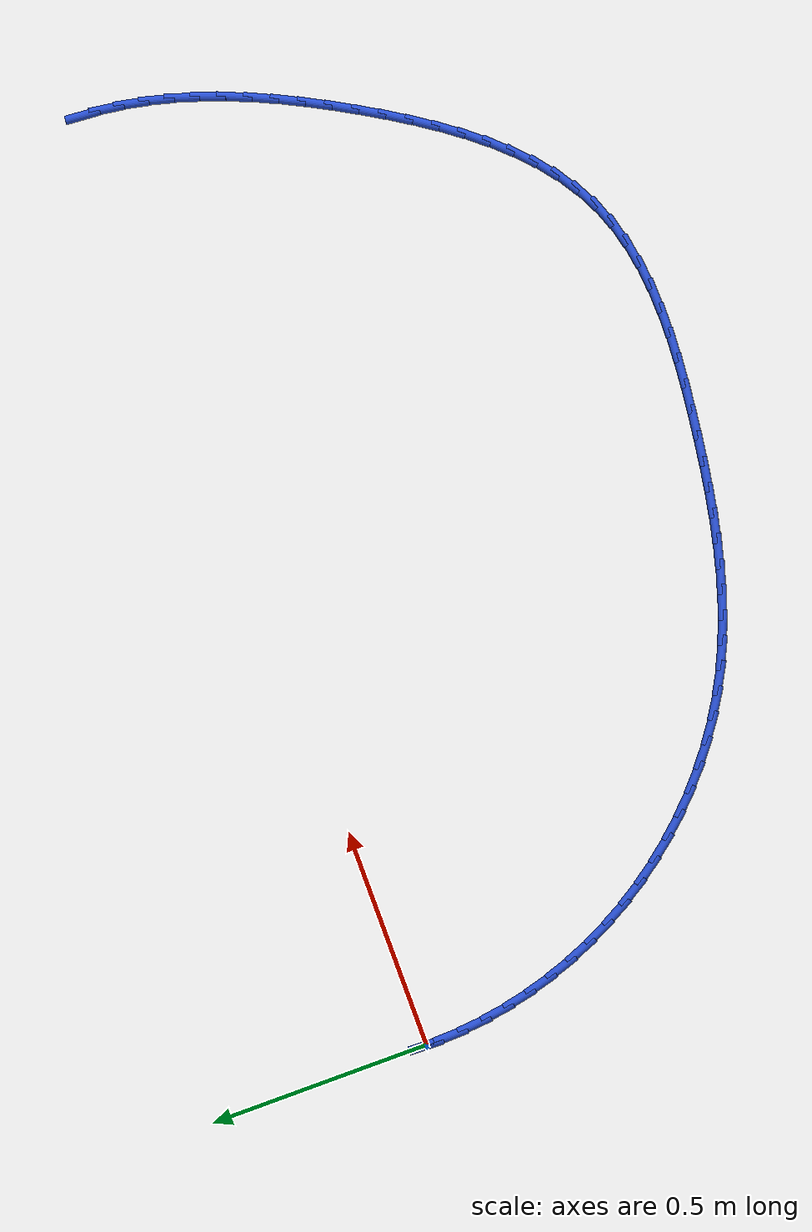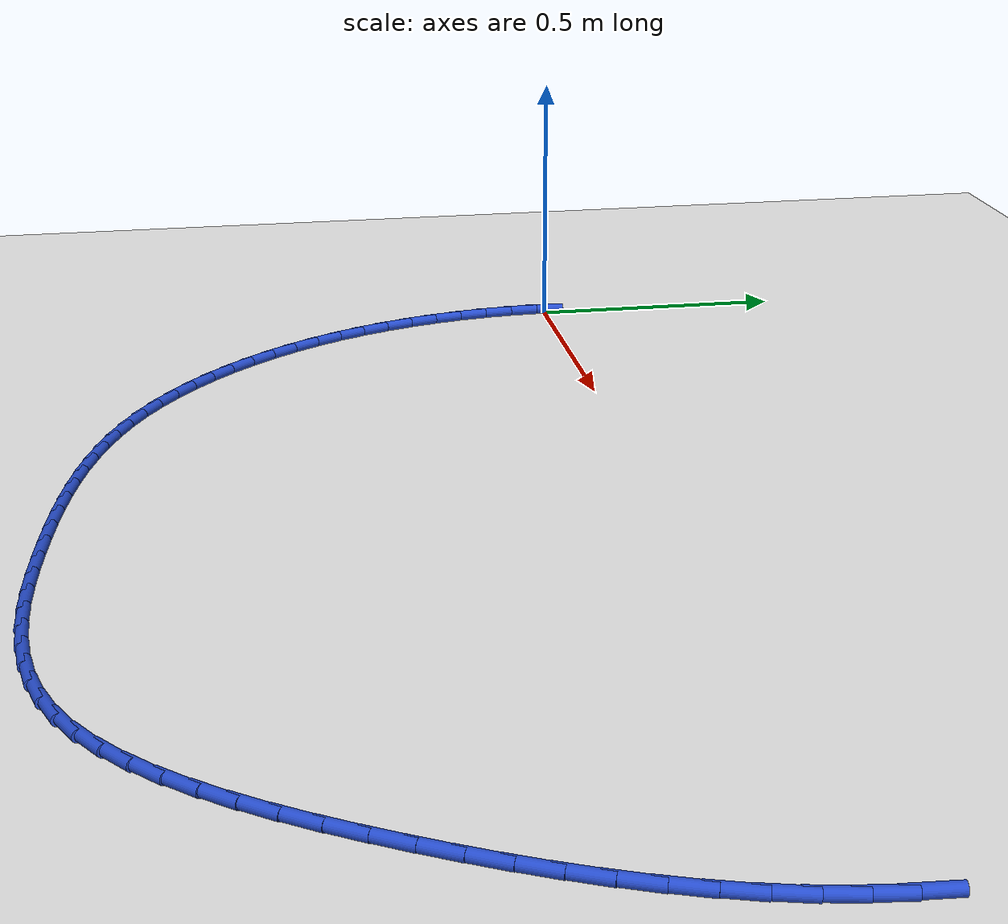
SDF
<sdf version="1.6">
 <world name="default">
  <model name="ground_plane">
   <static>1</static>
   <link name="link">
    <collision name="collision">
     <geometry><plane><normal>0 0 1</normal><size>100 100</size></plane></geometry>
     <surface><friction><ode><mu>100</mu><mu2>50</mu2></ode></friction></surface>
    </collision>
    <visual name="visual">
     <cast_shadows>0</cast_shadows>
     <geometry><plane><normal>0 0 1</normal><size>100 100</size></plane></geometry>
     <material>
      <script><uri>file://media/materials/scripts/gazebo.material</uri><name>Gazebo/WhiteGlow</name></script>
     </material>
    </visual>
   </link>
  </model>
  <model name="line">
   <link name="link_0">
    <pose>6.938893903907228e-18 -1.5265566588595902e-16 0.01 0 1.57 1.540218066502623</pose>
    <collision name="collision">
     <geometry><cylinder><radius>0.01</radius><length>0.08</length></cylinder></geometry>
    </collision>
    <visual name="visual">
     <material>
      <script><name>Gazebo/Blue</name><uri>file://media/materials/scripts/gazebo.material</uri></script>
     </material>
     <geometry><cylinder><radius>0.01</radius><length>0.08</length></cylinder></geometry>
    </visual>
   </link>
   <link name="link_61">
    <pose>2.2039437910739648 0.010382539438982713 0.01 0 1.57 1.498310728232734</pose>
    <collision name="collision">
     <geometry><cylinder><radius>0.01</radius><length>0.08</length></cylinder></geometry>
    </collision>
    <visual name="visual">
     <material>
      <script><name>Gazebo/Blue</name><uri>file://media/materials/scripts/gazebo.material</uri></script>
     </material>
     <geometry><cylinder><radius>0.01</radius><length>0.08</length></cylinder></geometry>
    </visual>
   </link>
   <link name="link_62">
    <pose>2.199922222593267 -0.04500118874816082 0.01 0 1.57 1.4302592985829485</pose>
    <collision name="collision">
     <geometry><cylinder><radius>0.01</radius><length>0.08</length></cylinder></geometry>
    </collision>
    <visual name="visual">
     <material>
      <script><name>Gazebo/Blue</name><uri>file://media/materials/scripts/gazebo.material</uri></script>
     </material>
     <geometry><cylinder><radius>0.01</radius><length>0.08</length></cylinder></geometry>
    </visual>
   </link>
   <link name="link_63">
    <pose>2.1920761381594764 -0.10046245247562685 0.01 0 1.57 1.3680539249075712</pose>
    <collision name="collision">
     <geometry><cylinder><radius>0.01</radius><length>0.08</length></cylinder></geometry>
    </collision>
    <visual name="visual">
     <material>
      <script><name>Gazebo/Blue</name><uri>file://media/materials/scripts/gazebo.material</uri></script>
     </material>
     <geometry><cylinder><radius>0.01</radius><length>0.08</length></cylinder></geometry>
    </visual>
   </link>
   <link name="link_64">
    <pose>2.1806736213981512 -0.15593114249581413 0.01 0 1.57 1.3116110732296762</pose>
    <collision name="collision">
     <geometry><cylinder><radius>0.01</radius><length>0.08</length></cylinder></geometry>
    </collision>
    <visual name="visual">
     <material>
      <script><name>Gazebo/Blue</name><uri>file://media/materials/scripts/gazebo.material</uri></script>
     </material>
     <geometry><cylinder><radius>0.01</radius><length>0.08</length></cylinder></geometry>
    </visual>
   </link>
   <link name="link_65">
    <pose>2.1659827559348455 -0.21133714956112346 0.01 0 1.57 1.2607044508384098</pose>
    <collision name="collision">
     <geometry><cylinder><radius>0.01</radius><length>0.08</length></cylinder></geometry>
    </collision>
    <visual name="visual">
     <material>
      <script><name>Gazebo/Blue</name><uri>file://media/materials/scripts/gazebo.material</uri></script>
     </material>
     <geometry><cylinder><radius>0.01</radius><length>0.08</length></cylinder></geometry>
    </visual>
   </link>
   <link name="link_66">
    <pose>2.148271625395115 -0.26661036442395564 0.01 0 1.57 1.2150228325093915</pose>
    <collision name="collision">
     <geometry><cylinder><radius>0.01</radius><length>0.08</length></cylinder></geometry>
    </collision>
    <visual name="visual">
     <material>
      <script><name>Gazebo/Blue</name><uri>file://media/materials/scripts/gazebo.material</uri></script>
     </material>
     <geometry><cylinder><radius>0.01</radius><length>0.08</length></cylinder></geometry>
    </visual>
   </link>
   <link name="link_67">
    <pose>2.127808313404516 -0.32168067783670923 0.01 0 1.57 1.1742152364113005</pose>
    <collision name="collision">
     <geometry><cylinder><radius>0.01</radius><length>0.08</length></cylinder></geometry>
    </collision>
    <visual name="visual">
     <material>
      <script><name>Gazebo/Blue</name><uri>file://media/materials/scripts/gazebo.material</uri></script>
     </material>
     <geometry><cylinder><radius>0.01</radius><length>0.08</length></cylinder></geometry>
    </visual>
   </link>
   <link name="link_68">
    <pose>2.104860903588604 -0.37647798055178516 0.01 0 1.57 1.1379235115586808</pose>
    <collision name="collision">
     <geometry><cylinder><radius>0.01</radius><length>0.08</length></cylinder></geometry>
    </collision>
    <visual name="visual">
     <material>
      <script><name>Gazebo/Blue</name><uri>file://media/materials/scripts/gazebo.material</uri></script>
     </material>
     <geometry><cylinder><radius>0.01</radius><length>0.08</length></cylinder></geometry>
    </visual>
   </link>
   <link name="link_69">
    <pose>2.079697479572936 -0.43093216332158363 0.01 0 1.57 1.1058043054249334</pose>
    <collision name="collision">
     <geometry><cylinder><radius>0.01</radius><length>0.08</length></cylinder></geometry>
    </collision>
    <visual name="visual">
     <material>
      <script><name>Gazebo/Blue</name><uri>file://media/materials/scripts/gazebo.material</uri></script>
     </material>
     <geometry><cylinder><radius>0.01</radius><length>0.08</length></cylinder></geometry>
    </visual>
   </link>
   <link name="link_70">
    <pose>2.0525861249830655 -0.4849731168985052 0.01 0 1.57 1.077542966920404</pose>
    <collision name="collision">
     <geometry><cylinder><radius>0.01</radius><length>0.08</length></cylinder></geometry>
    </collision>
    <visual name="visual">
     <material>
      <script><name>Gazebo/Blue</name><uri>file://media/materials/scripts/gazebo.material</uri></script>
     </material>
     <geometry><cylinder><radius>0.01</radius><length>0.08</length></cylinder></geometry>
    </visual>
   </link>
   <link name="link_71">
    <pose>2.023794923444551 -0.5385307320349487 0.01 0 1.57 1.052861814331005</pose>
    <collision name="collision">
     <geometry><cylinder><radius>0.01</radius><length>0.08</length></cylinder></geometry>
    </collision>
    <visual name="visual">
     <material>
      <script><name>Gazebo/Blue</name><uri>file://media/materials/scripts/gazebo.material</uri></script>
     </material>
     <geometry><cylinder><radius>0.01</radius><length>0.08</length></cylinder></geometry>
    </visual>
   </link>
   <link name="link_72">
    <pose>1.9935919585829471 -0.591534899483315 0.01 0 1.57 1.0300774965485733</pose>
    <collision name="collision">
     <geometry><cylinder><radius>0.01</radius><length>0.08</length></cylinder></geometry>
    </collision>
    <visual name="visual">
     <material>
      <script><name>Gazebo/Blue</name><uri>file://media/materials/scripts/gazebo.material</uri></script>
     </material>
     <geometry><cylinder><radius>0.01</radius><length>0.08</length></cylinder></geometry>
    </visual>
   </link>
   <link name="link_73">
    <pose>1.9621819333708788 -0.6438494406897004 0.01 0 1.57 1.002448240848405</pose>
    <collision name="collision">
     <geometry><cylinder><radius>0.01</radius><length>0.08</length></cylinder></geometry>
    </collision>
    <visual name="visual">
     <material>
      <script><name>Gazebo/Blue</name><uri>file://media/materials/scripts/gazebo.material</uri></script>
     </material>
     <geometry><cylinder><radius>0.01</radius><length>0.08</length></cylinder></geometry>
    </visual>
   </link>
   <link name="link_74">
    <pose>1.9294871487992558 -0.6950437954211309 0.01 0 1.57 0.9676568129241236</pose>
    <collision name="collision">
     <geometry><cylinder><radius>0.01</radius><length>0.08</length></cylinder></geometry>
    </collision>
    <visual name="visual">
     <material>
      <script><name>Gazebo/Blue</name><uri>file://media/materials/scripts/gazebo.material</uri></script>
     </material>
     <geometry><cylinder><radius>0.01</radius><length>0.08</length></cylinder></geometry>
    </visual>
   </link>
   <link name="link_75">
    <pose>1.8953512816030045 -0.744605443890549 0.01 0 1.57 0.9249916588104284</pose>
    <collision name="collision">
     <geometry><cylinder><radius>0.01</radius><length>0.08</length></cylinder></geometry>
    </collision>
    <visual name="visual">
     <material>
      <script><name>Gazebo/Blue</name><uri>file://media/materials/scripts/gazebo.material</uri></script>
     </material>
     <geometry><cylinder><radius>0.01</radius><length>0.08</length></cylinder></geometry>
    </visual>
   </link>
   <link name="link_76">
    <pose>1.8596180052353353 -0.7920218628899718 0.01 0 1.57 0.8735826763920108</pose>
    <collision name="collision">
     <geometry><cylinder><radius>0.01</radius><length>0.08</length></cylinder></geometry>
    </collision>
    <visual name="visual">
     <material>
      <script><name>Gazebo/Blue</name><uri>file://media/materials/scripts/gazebo.material</uri></script>
     </material>
     <geometry><cylinder><radius>0.01</radius><length>0.08</length></cylinder></geometry>
    </visual>
   </link>
   <link name="link_77">
    <pose>1.8221309931494565 -0.8367805292114147 0.01 0 1.57 0.8124497033204097</pose>
    <collision name="collision">
     <geometry><cylinder><radius>0.01</radius><length>0.08</length></cylinder></geometry>
    </collision>
    <visual name="visual">
     <material>
      <script><name>Gazebo/Blue</name><uri>file://media/materials/scripts/gazebo.material</uri></script>
     </material>
     <geometry><cylinder><radius>0.01</radius><length>0.08</length></cylinder></geometry>
    </visual>
   </link>
   <link name="link_78">
    <pose>1.7827339187985776 -0.8783689196468939 0.01 0 1.57 0.7406012134363759</pose>
    <collision name="collision">
     <geometry><cylinder><radius>0.01</radius><length>0.08</length></cylinder></geometry>
    </collision>
    <visual name="visual">
     <material>
      <script><name>Gazebo/Blue</name><uri>file://media/materials/scripts/gazebo.material</uri></script>
     </material>
     <geometry><cylinder><radius>0.01</radius><length>0.08</length></cylinder></geometry>
    </visual>
   </link>
   <link name="link_79">
    <pose>1.74127045563591 -0.9162745109884244 0.01 0 1.57 0.6572112907439716</pose>
    <collision name="collision">
     <geometry><cylinder><radius>0.01</radius><length>0.08</length></cylinder></geometry>
    </collision>
    <visual name="visual">
     <material>
      <script><name>Gazebo/Blue</name><uri>file://media/materials/scripts/gazebo.material</uri></script>
     </material>
     <geometry><cylinder><radius>0.01</radius><length>0.08</length></cylinder></geometry>
    </visual>
   </link>
   <link name="link_80">
    <pose>1.6975842771146625 -0.9499847800280228 0.01 0 1.57 0.5618966244991849</pose>
    <collision name="collision">
     <geometry><cylinder><radius>0.01</radius><length>0.08</length></cylinder></geometry>
    </collision>
    <visual name="visual">
     <material>
      <script><name>Gazebo/Blue</name><uri>file://media/materials/scripts/gazebo.material</uri></script>
     </material>
     <geometry><cylinder><radius>0.01</radius><length>0.08</length></cylinder></geometry>
    </visual>
   </link>
   <link name="link_81">
    <pose>1.6515190566880436 -0.9789872035577045 0.01 0 1.57 0.4551146470044492</pose>
    <collision name="collision">
     <geometry><cylinder><radius>0.01</radius><length>0.08</length></cylinder></geometry>
    </collision>
    <visual name="visual">
     <material>
      <script><name>Gazebo/Blue</name><uri>file://media/materials/scripts/gazebo.material</uri></script>
     </material>
     <geometry><cylinder><radius>0.01</radius><length>0.08</length></cylinder></geometry>
    </visual>
   </link>
   <link name="link_82">
    <pose>1.602919266836177 -1.0027709130510523 0.01 0 1.57 0.34458591877823724</pose>
    <collision name="collision">
     <geometry><cylinder><radius>0.01</radius><length>0.08</length></cylinder></geometry>
    </collision>
    <visual name="visual">
     <material>
      <script><name>Gazebo/Blue</name><uri>file://media/materials/scripts/gazebo.material</uri></script>
     </material>
     <geometry><cylinder><radius>0.01</radius><length>0.08</length></cylinder></geometry>
    </visual>
   </link>
   <link name="link_83">
    <pose>1.5517751023453081 -1.021126812062346 0.01 0 1.57 0.24539531831842692</pose>
    <collision name="collision">
     <geometry><cylinder><radius>0.01</radius><length>0.08</length></cylinder></geometry>
    </collision>
    <visual name="visual">
     <material>
      <script><name>Gazebo/Blue</name><uri>file://media/materials/scripts/gazebo.material</uri></script>
     </material>
     <geometry><cylinder><radius>0.01</radius><length>0.08</length></cylinder></geometry>
    </visual>
   </link>
   <link name="link_84">
    <pose>1.498390963080312 -1.0344964822943625 0.01 0 1.57 0.15980239967676935</pose>
    <collision name="collision">
     <geometry><cylinder><radius>0.01</radius><length>0.08</length></cylinder></geometry>
    </collision>
    <visual name="visual">
     <material>
      <script><name>Gazebo/Blue</name><uri>file://media/materials/scripts/gazebo.material</uri></script>
     </material>
     <geometry><cylinder><radius>0.01</radius><length>0.08</length></cylinder></geometry>
    </visual>
   </link>
   <link name="link_85">
    <pose>1.4431121203306836 -1.043406144893057 0.01 0 1.57 0.08733712328776598</pose>
    <collision name="collision">
     <geometry><cylinder><radius>0.01</radius><length>0.08</length></cylinder></geometry>
    </collision>
    <visual name="visual">
     <material>
      <script><name>Gazebo/Blue</name><uri>file://media/materials/scripts/gazebo.material</uri></script>
     </material>
     <geometry><cylinder><radius>0.01</radius><length>0.08</length></cylinder></geometry>
    </visual>
   </link>
   <link name="link_86">
    <pose>1.3862838453859219 -1.0483820210043846 0.01 0 1.57 0.02701815142292466</pose>
    <collision name="collision">
     <geometry><cylinder><radius>0.01</radius><length>0.08</length></cylinder></geometry>
    </collision>
    <visual name="visual">
     <material>
      <script><name>Gazebo/Blue</name><uri>file://media/materials/scripts/gazebo.material</uri></script>
     </material>
     <geometry><cylinder><radius>0.01</radius><length>0.08</length></cylinder></geometry>
    </visual>
   </link>
   <link name="link_87">
    <pose>1.3282514095355218 -1.049950331774301 0.01 0 1.57 -0.022292178139900986</pose>
    <collision name="collision">
     <geometry><cylinder><radius>0.01</radius><length>0.08</length></cylinder></geometry>
    </collision>
    <visual name="visual">
     <material>
      <script><name>Gazebo/Blue</name><uri>file://media/materials/scripts/gazebo.material</uri></script>
     </material>
     <geometry><cylinder><radius>0.01</radius><length>0.08</length></cylinder></geometry>
    </visual>
   </link>
   <link name="link_88">
    <pose>1.2693600840689803 -1.048637298348762 0.01 0 1.57 -0.0616700366240463</pose>
    <collision name="collision">
     <geometry><cylinder><radius>0.01</radius><length>0.08</length></cylinder></geometry>
    </collision>
    <visual name="visual">
     <material>
      <script><name>Gazebo/Blue</name><uri>file://media/materials/scripts/gazebo.material</uri></script>
     </material>
     <geometry><cylinder><radius>0.01</radius><length>0.08</length></cylinder></geometry>
    </visual>
   </link>
   <link name="link_89">
    <pose>1.2099551402757933 -1.0449691418737233 0.01 0 1.57 -0.0920133169513252</pose>
    <collision name="collision">
     <geometry><cylinder><radius>0.01</radius><length>0.08</length></cylinder></geometry>
    </collision>
    <visual name="visual">
     <material>
      <script><name>Gazebo/Blue</name><uri>file://media/materials/scripts/gazebo.material</uri></script>
     </material>
     <geometry><cylinder><radius>0.01</radius><length>0.08</length></cylinder></geometry>
    </visual>
   </link>
   <link name="link_90">
    <pose>1.1503818494454585 -1.03947208349514 0.01 0 1.57 -0.11398449984581523</pose>
    <collision name="collision">
     <geometry><cylinder><radius>0.01</radius><length>0.08</length></cylinder></geometry>
    </collision>
    <visual name="visual">
     <material>
      <script><name>Gazebo/Blue</name><uri>file://media/materials/scripts/gazebo.material</uri></script>
     </material>
     <geometry><cylinder><radius>0.01</radius><length>0.08</length></cylinder></geometry>
    </visual>
   </link>
   <link name="link_91">
    <pose>1.0909854828674719 -1.032672344358968 0.01 0 1.57 -0.1292805503838454</pose>
    <collision name="collision">
     <geometry><cylinder><radius>0.01</radius><length>0.08</length></cylinder></geometry>
    </collision>
    <visual name="visual">
     <material>
      <script><name>Gazebo/Blue</name><uri>file://media/materials/scripts/gazebo.material</uri></script>
     </material>
     <geometry><cylinder><radius>0.01</radius><length>0.08</length></cylinder></geometry>
    </visual>
   </link>
   <link name="link_92">
    <pose>1.0320820924856502 -1.0250145713899188 0.01 0 1.57 -0.1459272854230672</pose>
    <collision name="collision">
     <geometry><cylinder><radius>0.01</radius><length>0.08</length></cylinder></geometry>
    </collision>
    <visual name="visual">
     <material>
      <script><name>Gazebo/Blue</name><uri>file://media/materials/scripts/gazebo.material</uri></script>
     </material>
     <geometry><cylinder><radius>0.01</radius><length>0.08</length></cylinder></geometry>
    </visual>
   </link>
   <link name="link_93">
    <pose>0.973811126060222 -1.0164503700564542 0.01 0 1.57 -0.16699276554733183</pose>
    <collision name="collision">
     <geometry><cylinder><radius>0.01</radius><length>0.08</length></cylinder></geometry>
    </collision>
    <visual name="visual">
     <material>
      <script><name>Gazebo/Blue</name><uri>file://media/materials/scripts/gazebo.material</uri></script>
     </material>
     <geometry><cylinder><radius>0.01</radius><length>0.08</length></cylinder></geometry>
    </visual>
   </link>
   <link name="link_94">
    <pose>0.9162460169660407 -1.0067470476522233 0.01 0 1.57 -0.19262057598667492</pose>
    <collision name="collision">
     <geometry><cylinder><radius>0.01</radius><length>0.08</length></cylinder></geometry>
    </collision>
    <visual name="visual">
     <material>
      <script><name>Gazebo/Blue</name><uri>file://media/materials/scripts/gazebo.material</uri></script>
     </material>
     <geometry><cylinder><radius>0.01</radius><length>0.08</length></cylinder></geometry>
    </visual>
   </link>
   <link name="link_95">
    <pose>0.8594600842097107 -0.9956715921789621 0.01 0 1.57 -0.22294027346108725</pose>
    <collision name="collision">
     <geometry><cylinder><radius>0.01</radius><length>0.08</length></cylinder></geometry>
    </collision>
    <visual name="visual">
     <material>
      <script><name>Gazebo/Blue</name><uri>file://media/materials/scripts/gazebo.material</uri></script>
     </material>
     <geometry><cylinder><radius>0.01</radius><length>0.08</length></cylinder></geometry>
    </visual>
   </link>
   <link name="link_96">
    <pose>0.8035266467978356 -0.9829909916384073 0.01 0 1.57 -0.2580557994197365</pose>
    <collision name="collision">
     <geometry><cylinder><radius>0.01</radius><length>0.08</length></cylinder></geometry>
    </collision>
    <visual name="visual">
     <material>
      <script><name>Gazebo/Blue</name><uri>file://media/materials/scripts/gazebo.material</uri></script>
     </material>
     <geometry><cylinder><radius>0.01</radius><length>0.08</length></cylinder></geometry>
    </visual>
   </link>
   <link name="link_97">
    <pose>0.7485190237370208 -0.9684722340322945 0.01 0 1.57 -0.2980240763004129</pose>
    <collision name="collision">
     <geometry><cylinder><radius>0.01</radius><length>0.08</length></cylinder></geometry>
    </collision>
    <visual name="visual">
     <material>
      <script><name>Gazebo/Blue</name><uri>file://media/materials/scripts/gazebo.material</uri></script>
     </material>
     <geometry><cylinder><radius>0.01</radius><length>0.08</length></cylinder></geometry>
    </visual>
   </link>
   <link name="link_98">
    <pose>0.6945105340338701 -0.9518823073623605 0.01 0 1.57 -0.3428292500193258</pose>
    <collision name="collision">
     <geometry><cylinder><radius>0.01</radius><length>0.08</length></cylinder></geometry>
    </collision>
    <visual name="visual">
     <material>
      <script><name>Gazebo/Blue</name><uri>file://media/materials/scripts/gazebo.material</uri></script>
     </material>
     <geometry><cylinder><radius>0.01</radius><length>0.08</length></cylinder></geometry>
    </visual>
   </link>
   <link name="link_99">
    <pose>0.6415744966949888 -0.9329881996303415 0.01 0 1.57 -0.3923540896738115</pose>
    <collision name="collision">
     <geometry><cylinder><radius>0.01</radius><length>0.08</length></cylinder></geometry>
    </collision>
    <visual name="visual">
     <material>
      <script><name>Gazebo/Blue</name><uri>file://media/materials/scripts/gazebo.material</uri></script>
     </material>
     <geometry><cylinder><radius>0.01</radius><length>0.08</length></cylinder></geometry>
    </visual>
   </link>
   <link name="link_100">
    <pose>0.5897842307269795 -0.9115568988379732 0.01 0 1.57 -0.4463516063702631</pose>
    <collision name="collision">
     <geometry><cylinder><radius>0.01</radius><length>0.08</length></cylinder></geometry>
    </collision>
    <visual name="visual">
     <material>
      <script><name>Gazebo/Blue</name><uri>file://media/materials/scripts/gazebo.material</uri></script>
     </material>
     <geometry><cylinder><radius>0.01</radius><length>0.08</length></cylinder></geometry>
    </visual>
   </link>
   <link name="link_101">
    <pose>0.5392130551364488 -0.8873553929869928 0.01 0 1.57 -0.5044137203442942</pose>
    <collision name="collision">
     <geometry><cylinder><radius>0.01</radius><length>0.08</length></cylinder></geometry>
    </collision>
    <visual name="visual">
     <material>
      <script><name>Gazebo/Blue</name><uri>file://media/materials/scripts/gazebo.material</uri></script>
     </material>
     <geometry><cylinder><radius>0.01</radius><length>0.08</length></cylinder></geometry>
    </visual>
   </link>
   <link name="link_102">
    <pose>0.4899344504332956 -0.8601512694218707 0.01 0 1.57 -0.5645301650966489</pose>
    <collision name="collision">
     <geometry><cylinder><radius>0.01</radius><length>0.08</length></cylinder></geometry>
    </collision>
    <visual name="visual">
     <material>
      <script><name>Gazebo/Blue</name><uri>file://media/materials/scripts/gazebo.material</uri></script>
     </material>
     <geometry><cylinder><radius>0.01</radius><length>0.08</length></cylinder></geometry>
    </visual>
   </link>
   <link name="link_103">
    <pose>0.4420534690011121 -0.8298292794932778 0.01 0 1.57 -0.6233944974831958</pose>
    <collision name="collision">
     <geometry><cylinder><radius>0.01</radius><length>0.08</length></cylinder></geometry>
    </collision>
    <visual name="visual">
     <material>
      <script><name>Gazebo/Blue</name><uri>file://media/materials/scripts/gazebo.material</uri></script>
     </material>
     <geometry><cylinder><radius>0.01</radius><length>0.08</length></cylinder></geometry>
    </visual>
   </link>
   <link name="link_104">
    <pose>0.39574433756386196 -0.7965308822444152 0.01 0 1.57 -0.6809535403930475</pose>
    <collision name="collision">
     <geometry><cylinder><radius>0.01</radius><length>0.08</length></cylinder></geometry>
    </collision>
    <visual name="visual">
     <material>
      <script><name>Gazebo/Blue</name><uri>file://media/materials/scripts/gazebo.material</uri></script>
     </material>
     <geometry><cylinder><radius>0.01</radius><length>0.08</length></cylinder></geometry>
    </visual>
   </link>
   <link name="link_105">
    <pose>0.35119044937020216 -0.7604315539189256 0.01 0 1.57 -0.7376048977493445</pose>
    <collision name="collision">
     <geometry><cylinder><radius>0.01</radius><length>0.08</length></cylinder></geometry>
    </collision>
    <visual name="visual">
     <material>
      <script><name>Gazebo/Blue</name><uri>file://media/materials/scripts/gazebo.material</uri></script>
     </material>
     <geometry><cylinder><radius>0.01</radius><length>0.08</length></cylinder></geometry>
    </visual>
   </link>
   <link name="link_106">
    <pose>0.3085751976687866 -0.72170677076045 0.01 0 1.57 -0.7937432202420027</pose>
    <collision name="collision">
     <geometry><cylinder><radius>0.01</radius><length>0.08</length></cylinder></geometry>
    </collision>
    <visual name="visual">
     <material>
      <script><name>Gazebo/Blue</name><uri>file://media/materials/scripts/gazebo.material</uri></script>
     </material>
     <geometry><cylinder><radius>0.01</radius><length>0.08</length></cylinder></geometry>
    </visual>
   </link>
   <link name="link_107">
    <pose>0.2680819757082708 -0.6805320090126302 0.01 0 1.57 -0.8497586158573662</pose>
    <collision name="collision">
     <geometry><cylinder><radius>0.01</radius><length>0.08</length></cylinder></geometry>
    </collision>
    <visual name="visual">
     <material>
      <script><name>Gazebo/Blue</name><uri>file://media/materials/scripts/gazebo.material</uri></script>
     </material>
     <geometry><cylinder><radius>0.01</radius><length>0.08</length></cylinder></geometry>
    </visual>
   </link>
   <link name="link_108">
    <pose>0.22989417673730894 -0.6370827449191069 0.01 0 1.57 -0.9060358197590263</pose>
    <collision name="collision">
     <geometry><cylinder><radius>0.01</radius><length>0.08</length></cylinder></geometry>
    </collision>
    <visual name="visual">
     <material>
      <script><name>Gazebo/Blue</name><uri>file://media/materials/scripts/gazebo.material</uri></script>
     </material>
     <geometry><cylinder><radius>0.01</radius><length>0.08</length></cylinder></geometry>
    </visual>
   </link>
   <link name="link_109">
    <pose>0.19419519400455723 -0.5915344547235231 0.01 0 1.57 -0.9629533848179234</pose>
    <collision name="collision">
     <geometry><cylinder><radius>0.01</radius><length>0.08</length></cylinder></geometry>
    </collision>
    <visual name="visual">
     <material>
      <script><name>Gazebo/Blue</name><uri>file://media/materials/scripts/gazebo.material</uri></script>
     </material>
     <geometry><cylinder><radius>0.01</radius><length>0.08</length></cylinder></geometry>
    </visual>
   </link>
   <link name="link_110">
    <pose>0.1611684207586702 -0.5440626146695193 0.01 0 1.57 -1.020881835890015</pose>
    <collision name="collision">
     <geometry><cylinder><radius>0.01</radius><length>0.08</length></cylinder></geometry>
    </collision>
    <visual name="visual">
     <material>
      <script><name>Gazebo/Blue</name><uri>file://media/materials/scripts/gazebo.material</uri></script>
     </material>
     <geometry><cylinder><radius>0.01</radius><length>0.08</length></cylinder></geometry>
    </visual>
   </link>
   <link name="link_111">
    <pose>0.13099722367247527 -0.4948426978590484 0.01 0 1.57 -1.0797178197449724</pose>
    <collision name="collision">
     <geometry><cylinder><radius>0.01</radius><length>0.08</length></cylinder></geometry>
    </collision>
    <visual name="visual">
     <material>
      <script><name>Gazebo/Blue</name><uri>file://media/materials/scripts/gazebo.material</uri></script>
     </material>
     <geometry><cylinder><radius>0.01</radius><length>0.08</length></cylinder></geometry>
    </visual>
   </link>
   <link name="link_112">
    <pose>0.1038326461616985 -0.4440463562665722 0.01 0 1.57 -1.138324769550484</pose>
    <collision name="collision">
     <geometry><cylinder><radius>0.01</radius><length>0.08</length></cylinder></geometry>
    </collision>
    <visual name="visual">
     <material>
      <script><name>Gazebo/Blue</name><uri>file://media/materials/scripts/gazebo.material</uri></script>
     </material>
     <geometry><cylinder><radius>0.01</radius><length>0.08</length></cylinder></geometry>
    </visual>
   </link>
   <link name="link_113">
    <pose>0.07973059357858928 -0.3918339950213322 0.01 0 1.57 -1.1965444729346533</pose>
    <collision name="collision">
     <geometry><cylinder><radius>0.01</radius><length>0.08</length></cylinder></geometry>
    </collision>
    <visual name="visual">
     <material>
      <script><name>Gazebo/Blue</name><uri>file://media/materials/scripts/gazebo.material</uri></script>
     </material>
     <geometry><cylinder><radius>0.01</radius><length>0.08</length></cylinder></geometry>
    </visual>
   </link>
   <link name="link_114">
    <pose>0.05872955492943875 -0.3383639603610985 0.01 0 1.57 -1.2544692845957388</pose>
    <collision name="collision">
     <geometry><cylinder><radius>0.01</radius><length>0.08</length></cylinder></geometry>
    </collision>
    <visual name="visual">
     <material>
      <script><name>Gazebo/Blue</name><uri>file://media/materials/scripts/gazebo.material</uri></script>
     </material>
     <geometry><cylinder><radius>0.01</radius><length>0.08</length></cylinder></geometry>
    </visual>
   </link>
   <link name="link_115">
    <pose>0.04086801922053839 -0.2837945985236416 0.01 0 1.57 -1.3122000307454844</pose>
    <collision name="collision">
     <geometry><cylinder><radius>0.01</radius><length>0.08</length></cylinder></geometry>
    </collision>
    <visual name="visual">
     <material>
      <script><name>Gazebo/Blue</name><uri>file://media/materials/scripts/gazebo.material</uri></script>
     </material>
     <geometry><cylinder><radius>0.01</radius><length>0.08</length></cylinder></geometry>
    </visual>
   </link>
   <link name="link_116">
    <pose>0.026184475458180284 -0.22828425574673356 0.01 0 1.57 -1.3698424928503248</pose>
    <collision name="collision">
     <geometry><cylinder><radius>0.01</radius><length>0.08</length></cylinder></geometry>
    </collision>
    <visual name="visual">
     <material>
      <script><name>Gazebo/Blue</name><uri>file://media/materials/scripts/gazebo.material</uri></script>
     </material>
     <geometry><cylinder><radius>0.01</radius><length>0.08</length></cylinder></geometry>
    </visual>
   </link>
   <link name="link_117">
    <pose>0.014717412648655778 -0.17199127826814456 0.01 0 1.57 -1.427503950842887</pose>
    <collision name="collision">
     <geometry><cylinder><radius>0.01</radius><length>0.08</length></cylinder></geometry>
    </collision>
    <visual name="visual">
     <material>
      <script><name>Gazebo/Blue</name><uri>file://media/materials/scripts/gazebo.material</uri></script>
     </material>
     <geometry><cylinder><radius>0.01</radius><length>0.08</length></cylinder></geometry>
    </visual>
   </link>
   <link name="link_118">
    <pose>0.006505319798256474 -0.11507401232564558 0.01 0 1.57 -1.4852897670487069</pose>
    <collision name="collision">
     <geometry><cylinder><radius>0.01</radius><length>0.08</length></cylinder></geometry>
    </collision>
    <visual name="visual">
     <material>
      <script><name>Gazebo/Blue</name><uri>file://media/materials/scripts/gazebo.material</uri></script>
     </material>
     <geometry><cylinder><radius>0.01</radius><length>0.08</length></cylinder></geometry>
    </visual>
   </link>
   <link name="link_119">
    <pose>0.001586685913273966 -0.05769080415700654 0.01 0 1.57 -1.5432999858155314</pose>
    <collision name="collision">
     <geometry><cylinder><radius>0.01</radius><length>0.08</length></cylinder></geometry>
    </collision>
    <visual name="visual">
     <material>
      <script><name>Gazebo/Blue</name><uri>file://media/materials/scripts/gazebo.material</uri></script>
     </material>
     <geometry><cylinder><radius>0.01</radius><length>0.08</length></cylinder></geometry>
    </visual>
   </link>
   <link name="link_120">
    <pose>-1.0408340855860843e-17 4.163336342344337e-17 0.01 0 1.57 1.5399667238155843</pose>
    <collision name="collision">
     <geometry><cylinder><radius>0.01</radius><length>0.08</length></cylinder></geometry>
    </collision>
    <visual name="visual">
     <material>
      <script><name>Gazebo/Blue</name><uri>file://media/materials/scripts/gazebo.material</uri></script>
     </material>
     <geometry><cylinder><radius>0.01</radius><length>0.08</length></cylinder></geometry>
    </visual>
   </link>
  </model>
 </world>
</sdf>
